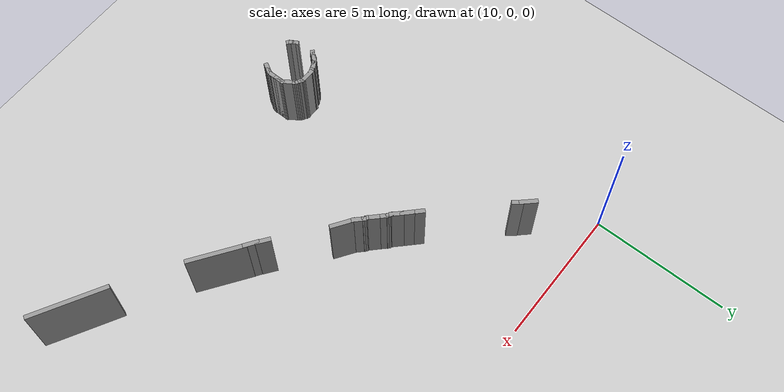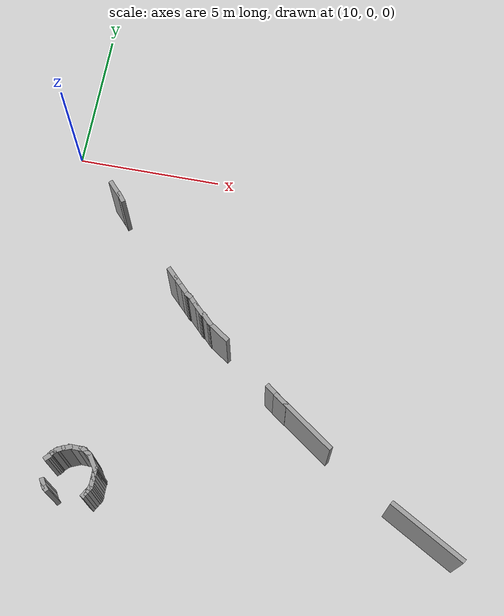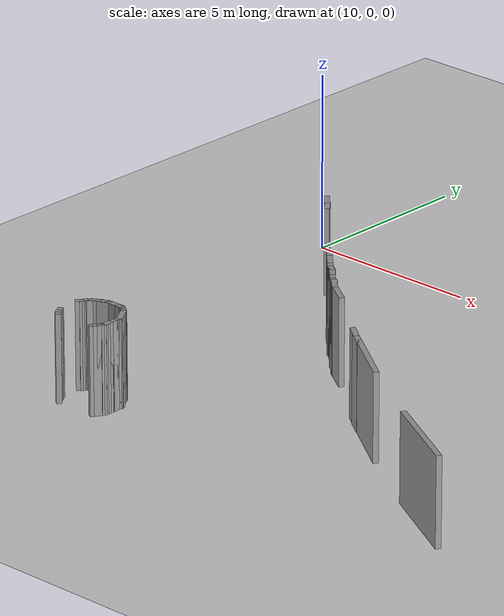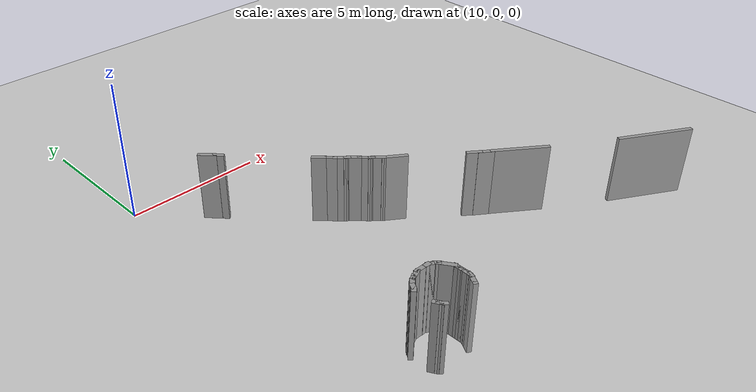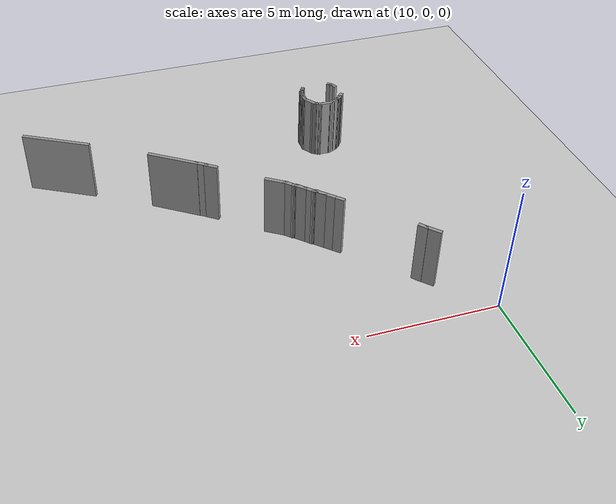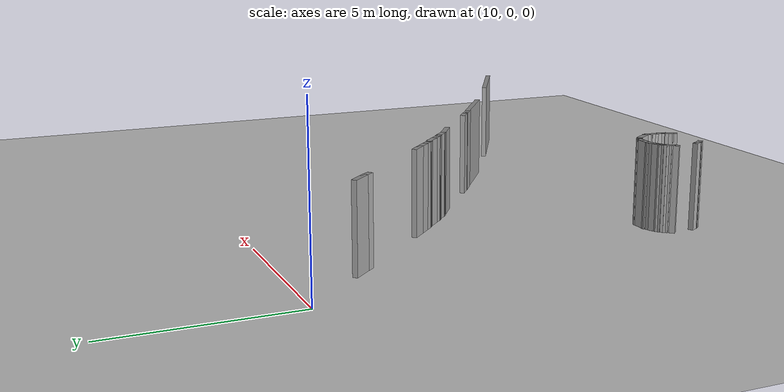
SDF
<sdf version="1.6">
 <world name="default">
  <model name="ground_plane">
   <static>1</static>
   <link name="link">
    <collision name="collision">
     <geometry><plane><normal>0 0 1</normal><size>100 100</size></plane></geometry>
     <surface><friction><ode><mu>100</mu><mu2>50</mu2></ode></friction></surface>
    </collision>
    <visual name="visual">
     <cast_shadows>0</cast_shadows>
     <geometry><plane><normal>0 0 1</normal><size>100 100</size></plane></geometry>
     <material>
      <script><uri>file://media/materials/scripts/gazebo.material</uri><name>Gazebo/Grey</name></script>
     </material>
    </visual>
   </link>
  </model>
  <model name="scene">
   <pose>1.8013 -1.70593 0 0 -0 0</pose>
   <link name="Wall_726">
    <collision name="Wall_726_Collision">
     <geometry><box><size>0.643159 0.15 2.5</size></box></geometry>
     <pose>0 0 1.25 0 -0 0</pose>
    </collision>
    <visual name="Wall_726_Visual">
     <pose>0 0 1.25 0 -0 0</pose>
     <geometry><box><size>0.643159 0.15 2.5</size></box></geometry>
     <material>
      <script><uri>file://media/materials/scripts/gazebo.material</uri><name>Gazebo/Grey</name></script>
      <ambient>1 1 1 1</ambient>
     </material>
    </visual>
    <pose>10.1342 -0.209403 0 0 0 -0.82161</pose>
   </link>
   <link name="Wall_727">
    <collision name="Wall_727_Collision">
     <geometry><box><size>0.403183 0.15 2.5</size></box></geometry>
     <pose>0 0 1.25 0 -0 0</pose>
    </collision>
    <visual name="Wall_727_Visual">
     <pose>0 0 1.25 0 -0 0</pose>
     <geometry><box><size>0.403183 0.15 2.5</size></box></geometry>
     <material>
      <script><uri>file://media/materials/scripts/gazebo.material</uri><name>Gazebo/Grey</name></script>
      <ambient>1 1 1 1</ambient>
     </material>
    </visual>
    <pose>10.3816 -0.475814 0 0 0 -0.891376</pose>
   </link>
   <link name="Wall_729">
    <collision name="Wall_729_Collision">
     <geometry><box><size>0.5 0.15 2.5</size></box></geometry>
     <pose>0 0 1.25 0 -0 0</pose>
    </collision>
    <visual name="Wall_729_Visual">
     <pose>0 0 1.25 0 -0 0</pose>
     <geometry><box><size>0.5 0.15 2.5</size></box></geometry>
     <material>
      <script><uri>file://media/materials/scripts/gazebo.material</uri><name>Gazebo/Grey</name></script>
      <ambient>1 1 1 1</ambient>
     </material>
    </visual>
    <pose>12.6596 -2.84662 0 0 0 -0.785398</pose>
   </link>
   <link name="Wall_730">
    <collision name="Wall_730_Collision">
     <geometry><box><size>0.5 0.15 2.5</size></box></geometry>
     <pose>0 0 1.25 0 -0 0</pose>
    </collision>
    <visual name="Wall_730_Visual">
     <pose>0 0 1.25 0 -0 0</pose>
     <geometry><box><size>0.5 0.15 2.5</size></box></geometry>
     <material>
      <script><uri>file://media/materials/scripts/gazebo.material</uri><name>Gazebo/Grey</name></script>
      <ambient>1 1 1 1</ambient>
     </material>
    </visual>
    <pose>12.9071 -3.0941 0 0 0 -0.785398</pose>
   </link>
   <link name="Wall_731">
    <collision name="Wall_731_Collision">
     <geometry><box><size>0.5 0.15 2.5</size></box></geometry>
     <pose>0 0 1.25 0 -0 0</pose>
    </collision>
    <visual name="Wall_731_Visual">
     <pose>0 0 1.25 0 -0 0</pose>
     <geometry><box><size>0.5 0.15 2.5</size></box></geometry>
     <material>
      <script><uri>file://media/materials/scripts/gazebo.material</uri><name>Gazebo/Grey</name></script>
      <ambient>1 1 1 1</ambient>
     </material>
    </visual>
    <pose>13.1546 -3.34159 0 0 0 -0.785398</pose>
   </link>
   <link name="Wall_732">
    <collision name="Wall_732_Collision">
     <geometry><box><size>0.25 0.15 2.5</size></box></geometry>
     <pose>0 0 1.25 0 -0 0</pose>
    </collision>
    <visual name="Wall_732_Visual">
     <pose>0 0 1.25 0 -0 0</pose>
     <geometry><box><size>0.25 0.15 2.5</size></box></geometry>
     <material>
      <script><uri>file://media/materials/scripts/gazebo.material</uri><name>Gazebo/Grey</name></script>
      <ambient>1 1 1 1</ambient>
     </material>
    </visual>
    <pose>13.3216 -3.49034 0 0 0 -0.523599</pose>
   </link>
   <link name="Wall_733">
    <collision name="Wall_733_Collision">
     <geometry><box><size>0.5 0.15 2.5</size></box></geometry>
     <pose>0 0 1.25 0 -0 0</pose>
    </collision>
    <visual name="Wall_733_Visual">
     <pose>0 0 1.25 0 -0 0</pose>
     <geometry><box><size>0.5 0.15 2.5</size></box></geometry>
     <material>
      <script><uri>file://media/materials/scripts/gazebo.material</uri><name>Gazebo/Grey</name></script>
      <ambient>1 1 1 1</ambient>
     </material>
    </visual>
    <pose>13.4887 -3.63908 0 0 0 -0.785398</pose>
   </link>
   <link name="Wall_734">
    <collision name="Wall_734_Collision">
     <geometry><box><size>0.5 0.15 2.5</size></box></geometry>
     <pose>0 0 1.25 0 -0 0</pose>
    </collision>
    <visual name="Wall_734_Visual">
     <pose>0 0 1.25 0 -0 0</pose>
     <geometry><box><size>0.5 0.15 2.5</size></box></geometry>
     <material>
      <script><uri>file://media/materials/scripts/gazebo.material</uri><name>Gazebo/Grey</name></script>
      <ambient>1 1 1 1</ambient>
     </material>
    </visual>
    <pose>13.7362 -3.88657 0 0 0 -0.785398</pose>
   </link>
   <link name="Wall_735">
    <collision name="Wall_735_Collision">
     <geometry><box><size>0.25 0.15 2.5</size></box></geometry>
     <pose>0 0 1.25 0 -0 0</pose>
    </collision>
    <visual name="Wall_735_Visual">
     <pose>0 0 1.25 0 -0 0</pose>
     <geometry><box><size>0.25 0.15 2.5</size></box></geometry>
     <material>
      <script><uri>file://media/materials/scripts/gazebo.material</uri><name>Gazebo/Grey</name></script>
      <ambient>1 1 1 1</ambient>
     </material>
    </visual>
    <pose>13.9032 -4.03531 0 0 0 -0.523599</pose>
   </link>
   <link name="Wall_736">
    <collision name="Wall_736_Collision">
     <geometry><box><size>0.5 0.15 2.5</size></box></geometry>
     <pose>0 0 1.25 0 -0 0</pose>
    </collision>
    <visual name="Wall_736_Visual">
     <pose>0 0 1.25 0 -0 0</pose>
     <geometry><box><size>0.5 0.15 2.5</size></box></geometry>
     <material>
      <script><uri>file://media/materials/scripts/gazebo.material</uri><name>Gazebo/Grey</name></script>
      <ambient>1 1 1 1</ambient>
     </material>
    </visual>
    <pose>14.0703 -4.18405 0 0 0 -0.785398</pose>
   </link>
   <link name="Wall_737">
    <collision name="Wall_737_Collision">
     <geometry><box><size>0.885349 0.15 2.5</size></box></geometry>
     <pose>0 0 1.25 0 -0 0</pose>
    </collision>
    <visual name="Wall_737_Visual">
     <pose>0 0 1.25 0 -0 0</pose>
     <geometry><box><size>0.885349 0.15 2.5</size></box></geometry>
     <material>
      <script><uri>file://media/materials/scripts/gazebo.material</uri><name>Gazebo/Grey</name></script>
      <ambient>1 1 1 1</ambient>
     </material>
    </visual>
    <pose>14.498 -4.51461 0 0 0 -0.597392</pose>
   </link>
   <link name="Wall_740">
    <collision name="Wall_740_Collision">
     <geometry><box><size>0.545464 0.15 2.5</size></box></geometry>
     <pose>0 0 1.25 0 -0 0</pose>
    </collision>
    <visual name="Wall_740_Visual">
     <pose>0 0 1.25 0 -0 0</pose>
     <geometry><box><size>0.545464 0.15 2.5</size></box></geometry>
     <material>
      <script><uri>file://media/materials/scripts/gazebo.material</uri><name>Gazebo/Grey</name></script>
      <ambient>1 1 1 1</ambient>
     </material>
    </visual>
    <pose>16.5696 -6.13706 0 0 0 -0.646181</pose>
   </link>
   <link name="Wall_741">
    <collision name="Wall_741_Collision">
     <geometry><box><size>0.559834 0.15 2.5</size></box></geometry>
     <pose>0 0 1.25 0 -0 0</pose>
    </collision>
    <visual name="Wall_741_Visual">
     <pose>0 0 1.25 0 -0 0</pose>
     <geometry><box><size>0.559834 0.15 2.5</size></box></geometry>
     <material>
      <script><uri>file://media/materials/scripts/gazebo.material</uri><name>Gazebo/Grey</name></script>
      <ambient>1 1 1 1</ambient>
     </material>
    </visual>
    <pose>16.8828 -6.37355 0 0 0 -0.610244</pose>
   </link>
   <link name="Wall_742">
    <collision name="Wall_742_Collision">
     <geometry><box><size>2.05114 0.15 2.5</size></box></geometry>
     <pose>0 0 1.25 0 -0 0</pose>
    </collision>
    <visual name="Wall_742_Visual">
     <pose>0 0 1.25 0 -0 0</pose>
     <geometry><box><size>2.05114 0.15 2.5</size></box></geometry>
     <material>
      <script><uri>file://media/materials/scripts/gazebo.material</uri><name>Gazebo/Grey</name></script>
      <ambient>1 1 1 1</ambient>
     </material>
    </visual>
    <pose>17.8398 -7.0393 0 0 0 -0.614835</pose>
   </link>
   <link name="Wall_746">
    <collision name="Wall_746_Collision">
     <geometry><box><size>2.77223 0.15 2.5</size></box></geometry>
     <pose>0 0 1.25 0 -0 0</pose>
    </collision>
    <visual name="Wall_746_Visual">
     <pose>0 0 1.25 0 -0 0</pose>
     <geometry><box><size>2.77223 0.15 2.5</size></box></geometry>
     <material>
      <script><uri>file://media/materials/scripts/gazebo.material</uri><name>Gazebo/Grey</name></script>
      <ambient>1 1 1 1</ambient>
     </material>
    </visual>
    <pose>21.9513 -9.59912 0 0 -0 2.62825</pose>
   </link>
   <link name="Wall_904">
    <collision name="Wall_904_Collision">
     <geometry><box><size>0.25 0.15 2.5</size></box></geometry>
     <pose>0 0 1.25 0 -0 0</pose>
    </collision>
    <visual name="Wall_904_Visual">
     <pose>0 0 1.25 0 -0 0</pose>
     <geometry><box><size>0.25 0.15 2.5</size></box></geometry>
     <material>
      <script><uri>file://media/materials/scripts/gazebo.material</uri><name>Gazebo/Grey</name></script>
      <ambient>1 1 1 1</ambient>
     </material>
    </visual>
    <pose>11.6241 -9.61394 0 0 0 -1.5708</pose>
   </link>
   <link name="Wall_905">
    <collision name="Wall_905_Collision">
     <geometry><box><size>0.25 0.15 2.5</size></box></geometry>
     <pose>0 0 1.25 0 -0 0</pose>
    </collision>
    <visual name="Wall_905_Visual">
     <pose>0 0 1.25 0 -0 0</pose>
     <geometry><box><size>0.25 0.15 2.5</size></box></geometry>
     <material>
      <script><uri>file://media/materials/scripts/gazebo.material</uri><name>Gazebo/Grey</name></script>
      <ambient>1 1 1 1</ambient>
     </material>
    </visual>
    <pose>11.6241 -9.71394 0 0 0 -1.5708</pose>
   </link>
   <link name="Wall_906">
    <collision name="Wall_906_Collision">
     <geometry><box><size>0.25 0.15 2.5</size></box></geometry>
     <pose>0 0 1.25 0 -0 0</pose>
    </collision>
    <visual name="Wall_906_Visual">
     <pose>0 0 1.25 0 -0 0</pose>
     <geometry><box><size>0.25 0.15 2.5</size></box></geometry>
     <material>
      <script><uri>file://media/materials/scripts/gazebo.material</uri><name>Gazebo/Grey</name></script>
      <ambient>1 1 1 1</ambient>
     </material>
    </visual>
    <pose>11.6241 -9.81394 0 0 0 -1.5708</pose>
   </link>
   <link name="Wall_907">
    <collision name="Wall_907_Collision">
     <geometry><box><size>0.25 0.15 2.5</size></box></geometry>
     <pose>0 0 1.25 0 -0 0</pose>
    </collision>
    <visual name="Wall_907_Visual">
     <pose>0 0 1.25 0 -0 0</pose>
     <geometry><box><size>0.25 0.15 2.5</size></box></geometry>
     <material>
      <script><uri>file://media/materials/scripts/gazebo.material</uri><name>Gazebo/Grey</name></script>
      <ambient>1 1 1 1</ambient>
     </material>
    </visual>
    <pose>11.6241 -9.91394 0 0 0 -1.5708</pose>
   </link>
   <link name="Wall_908">
    <collision name="Wall_908_Collision">
     <geometry><box><size>0.25 0.15 2.5</size></box></geometry>
     <pose>0 0 1.25 0 -0 0</pose>
    </collision>
    <visual name="Wall_908_Visual">
     <pose>0 0 1.25 0 -0 0</pose>
     <geometry><box><size>0.25 0.15 2.5</size></box></geometry>
     <material>
      <script><uri>file://media/materials/scripts/gazebo.material</uri><name>Gazebo/Grey</name></script>
      <ambient>1 1 1 1</ambient>
     </material>
    </visual>
    <pose>11.6241 -10.0139 0 0 0 -1.5708</pose>
   </link>
   <link name="Wall_909">
    <collision name="Wall_909_Collision">
     <geometry><box><size>0.25 0.15 2.5</size></box></geometry>
     <pose>0 0 1.25 0 -0 0</pose>
    </collision>
    <visual name="Wall_909_Visual">
     <pose>0 0 1.25 0 -0 0</pose>
     <geometry><box><size>0.25 0.15 2.5</size></box></geometry>
     <material>
      <script><uri>file://media/materials/scripts/gazebo.material</uri><name>Gazebo/Grey</name></script>
      <ambient>1 1 1 1</ambient>
     </material>
    </visual>
    <pose>11.6111 -10.1122 0 0 0 -1.8326</pose>
   </link>
   <link name="Wall_910">
    <collision name="Wall_910_Collision">
     <geometry><box><size>0.25 0.15 2.5</size></box></geometry>
     <pose>0 0 1.25 0 -0 0</pose>
    </collision>
    <visual name="Wall_910_Visual">
     <pose>0 0 1.25 0 -0 0</pose>
     <geometry><box><size>0.25 0.15 2.5</size></box></geometry>
     <material>
      <script><uri>file://media/materials/scripts/gazebo.material</uri><name>Gazebo/Grey</name></script>
      <ambient>1 1 1 1</ambient>
     </material>
    </visual>
    <pose>11.5732 -10.2038 0 0 0 -2.0944</pose>
   </link>
   <link name="Wall_911">
    <collision name="Wall_911_Collision">
     <geometry><box><size>0.25 0.15 2.5</size></box></geometry>
     <pose>0 0 1.25 0 -0 0</pose>
    </collision>
    <visual name="Wall_911_Visual">
     <pose>0 0 1.25 0 -0 0</pose>
     <geometry><box><size>0.25 0.15 2.5</size></box></geometry>
     <material>
      <script><uri>file://media/materials/scripts/gazebo.material</uri><name>Gazebo/Grey</name></script>
      <ambient>1 1 1 1</ambient>
     </material>
    </visual>
    <pose>11.5232 -10.2904 0 0 0 -2.0944</pose>
   </link>
   <link name="Wall_912">
    <collision name="Wall_912_Collision">
     <geometry><box><size>0.25 0.15 2.5</size></box></geometry>
     <pose>0 0 1.25 0 -0 0</pose>
    </collision>
    <visual name="Wall_912_Visual">
     <pose>0 0 1.25 0 -0 0</pose>
     <geometry><box><size>0.25 0.15 2.5</size></box></geometry>
     <material>
      <script><uri>file://media/materials/scripts/gazebo.material</uri><name>Gazebo/Grey</name></script>
      <ambient>1 1 1 1</ambient>
     </material>
    </visual>
    <pose>11.4732 -10.377 0 0 0 -2.0944</pose>
   </link>
   <link name="Wall_926">
    <collision name="Wall_926_Collision">
     <geometry><box><size>0.25 0.15 2.5</size></box></geometry>
     <pose>0 0 1.25 0 -0 0</pose>
    </collision>
    <visual name="Wall_926_Visual">
     <pose>0 0 1.25 0 -0 0</pose>
     <geometry><box><size>0.25 0.15 2.5</size></box></geometry>
     <material>
      <script><uri>file://media/materials/scripts/gazebo.material</uri><name>Gazebo/Grey</name></script>
      <ambient>1 1 1 1</ambient>
     </material>
    </visual>
    <pose>10.2352 -10.4005 0 0 -0 2.35619</pose>
   </link>
   <link name="Wall_927">
    <collision name="Wall_927_Collision">
     <geometry><box><size>0.25 0.15 2.5</size></box></geometry>
     <pose>0 0 1.25 0 -0 0</pose>
    </collision>
    <visual name="Wall_927_Visual">
     <pose>0 0 1.25 0 -0 0</pose>
     <geometry><box><size>0.25 0.15 2.5</size></box></geometry>
     <material>
      <script><uri>file://media/materials/scripts/gazebo.material</uri><name>Gazebo/Grey</name></script>
      <ambient>1 1 1 1</ambient>
     </material>
    </visual>
    <pose>10.1749 -10.3219 0 0 -0 2.0944</pose>
   </link>
   <link name="Wall_928">
    <collision name="Wall_928_Collision">
     <geometry><box><size>0.25 0.15 2.5</size></box></geometry>
     <pose>0 0 1.25 0 -0 0</pose>
    </collision>
    <visual name="Wall_928_Visual">
     <pose>0 0 1.25 0 -0 0</pose>
     <geometry><box><size>0.25 0.15 2.5</size></box></geometry>
     <material>
      <script><uri>file://media/materials/scripts/gazebo.material</uri><name>Gazebo/Grey</name></script>
      <ambient>1 1 1 1</ambient>
     </material>
    </visual>
    <pose>10.1249 -10.2353 0 0 -0 2.0944</pose>
   </link>
   <link name="Wall_931">
    <collision name="Wall_931_Collision">
     <geometry><box><size>0.25 0.15 2.5</size></box></geometry>
     <pose>0 0 1.25 0 -0 0</pose>
    </collision>
    <visual name="Wall_931_Visual">
     <pose>0 0 1.25 0 -0 0</pose>
     <geometry><box><size>0.25 0.15 2.5</size></box></geometry>
     <material>
      <script><uri>file://media/materials/scripts/gazebo.material</uri><name>Gazebo/Grey</name></script>
      <ambient>1 1 1 1</ambient>
     </material>
    </visual>
    <pose>10.0852 -9.47001 0 0 -0 0.785398</pose>
   </link>
   <link name="Wall_932">
    <collision name="Wall_932_Collision">
     <geometry><box><size>0.25 0.15 2.5</size></box></geometry>
     <pose>0 0 1.25 0 -0 0</pose>
    </collision>
    <visual name="Wall_932_Visual">
     <pose>0 0 1.25 0 -0 0</pose>
     <geometry><box><size>0.25 0.15 2.5</size></box></geometry>
     <material>
      <script><uri>file://media/materials/scripts/gazebo.material</uri><name>Gazebo/Grey</name></script>
      <ambient>1 1 1 1</ambient>
     </material>
    </visual>
    <pose>10.1456 -9.39135 0 0 -0 1.0472</pose>
   </link>
   <link name="Wall_933">
    <collision name="Wall_933_Collision">
     <geometry><box><size>0.25 0.15 2.5</size></box></geometry>
     <pose>0 0 1.25 0 -0 0</pose>
    </collision>
    <visual name="Wall_933_Visual">
     <pose>0 0 1.25 0 -0 0</pose>
     <geometry><box><size>0.25 0.15 2.5</size></box></geometry>
     <material>
      <script><uri>file://media/materials/scripts/gazebo.material</uri><name>Gazebo/Grey</name></script>
      <ambient>1 1 1 1</ambient>
     </material>
    </visual>
    <pose>10.2059 -9.3127 0 0 -0 0.785398</pose>
   </link>
   <link name="Wall_934">
    <collision name="Wall_934_Collision">
     <geometry><box><size>0.25 0.15 2.5</size></box></geometry>
     <pose>0 0 1.25 0 -0 0</pose>
    </collision>
    <visual name="Wall_934_Visual">
     <pose>0 0 1.25 0 -0 0</pose>
     <geometry><box><size>0.25 0.15 2.5</size></box></geometry>
     <material>
      <script><uri>file://media/materials/scripts/gazebo.material</uri><name>Gazebo/Grey</name></script>
      <ambient>1 1 1 1</ambient>
     </material>
    </visual>
    <pose>10.2767 -9.24198 0 0 -0 0.785398</pose>
   </link>
   <link name="Wall_935">
    <collision name="Wall_935_Collision">
     <geometry><box><size>0.25 0.15 2.5</size></box></geometry>
     <pose>0 0 1.25 0 -0 0</pose>
    </collision>
    <visual name="Wall_935_Visual">
     <pose>0 0 1.25 0 -0 0</pose>
     <geometry><box><size>0.25 0.15 2.5</size></box></geometry>
     <material>
      <script><uri>file://media/materials/scripts/gazebo.material</uri><name>Gazebo/Grey</name></script>
      <ambient>1 1 1 1</ambient>
     </material>
    </visual>
    <pose>10.3553 -9.18163 0 0 -0 0.523599</pose>
   </link>
   <link name="Wall_936">
    <collision name="Wall_936_Collision">
     <geometry><box><size>0.25 0.15 2.5</size></box></geometry>
     <pose>0 0 1.25 0 -0 0</pose>
    </collision>
    <visual name="Wall_936_Visual">
     <pose>0 0 1.25 0 -0 0</pose>
     <geometry><box><size>0.25 0.15 2.5</size></box></geometry>
     <material>
      <script><uri>file://media/materials/scripts/gazebo.material</uri><name>Gazebo/Grey</name></script>
      <ambient>1 1 1 1</ambient>
     </material>
    </visual>
    <pose>10.4419 -9.13163 0 0 -0 0.523599</pose>
   </link>
   <link name="Wall_938">
    <collision name="Wall_938_Collision">
     <geometry><box><size>0.477671 0.15 2.5</size></box></geometry>
     <pose>0 0 1.25 0 -0 0</pose>
    </collision>
    <visual name="Wall_938_Visual">
     <pose>0 0 1.25 0 -0 0</pose>
     <geometry><box><size>0.477671 0.15 2.5</size></box></geometry>
     <material>
      <script><uri>file://media/materials/scripts/gazebo.material</uri><name>Gazebo/Grey</name></script>
      <ambient>1 1 1 1</ambient>
     </material>
    </visual>
    <pose>10.5502 -9.09439 0 0 -0 0.389653</pose>
   </link>
   <link name="Wall_939">
    <collision name="Wall_939_Collision">
     <geometry><box><size>0.5 0.15 2.5</size></box></geometry>
     <pose>0 0 1.25 0 -0 0</pose>
    </collision>
    <visual name="Wall_939_Visual">
     <pose>0 0 1.25 0 -0 0</pose>
     <geometry><box><size>0.5 0.15 2.5</size></box></geometry>
     <material>
      <script><uri>file://media/materials/scripts/gazebo.material</uri><name>Gazebo/Grey</name></script>
      <ambient>1 1 1 1</ambient>
     </material>
    </visual>
    <pose>10.8767 -9.02494 0 0 -0 0</pose>
   </link>
   <link name="Wall_940">
    <collision name="Wall_940_Collision">
     <geometry><box><size>0.236861 0.15 2.5</size></box></geometry>
     <pose>0 0 1.25 0 -0 0</pose>
    </collision>
    <visual name="Wall_940_Visual">
     <pose>0 0 1.25 0 -0 0</pose>
     <geometry><box><size>0.236861 0.15 2.5</size></box></geometry>
     <material>
      <script><uri>file://media/materials/scripts/gazebo.material</uri><name>Gazebo/Grey</name></script>
      <ambient>1 1 1 1</ambient>
     </material>
    </visual>
    <pose>11.095 -9.03189 0 0 -0 0.006105</pose>
   </link>
   <link name="Wall_941">
    <collision name="Wall_941_Collision">
     <geometry><box><size>0.25 0.15 2.5</size></box></geometry>
     <pose>0 0 1.25 0 -0 0</pose>
    </collision>
    <visual name="Wall_941_Visual">
     <pose>0 0 1.25 0 -0 0</pose>
     <geometry><box><size>0.25 0.15 2.5</size></box></geometry>
     <material>
      <script><uri>file://media/materials/scripts/gazebo.material</uri><name>Gazebo/Grey</name></script>
      <ambient>1 1 1 1</ambient>
     </material>
    </visual>
    <pose>11.1816 -9.05663 0 0 0 -0.523599</pose>
   </link>
   <link name="Wall_942">
    <collision name="Wall_942_Collision">
     <geometry><box><size>0.25 0.15 2.5</size></box></geometry>
     <pose>0 0 1.25 0 -0 0</pose>
    </collision>
    <visual name="Wall_942_Visual">
     <pose>0 0 1.25 0 -0 0</pose>
     <geometry><box><size>0.25 0.15 2.5</size></box></geometry>
     <material>
      <script><uri>file://media/materials/scripts/gazebo.material</uri><name>Gazebo/Grey</name></script>
      <ambient>1 1 1 1</ambient>
     </material>
    </visual>
    <pose>11.2682 -9.10663 0 0 0 -0.523599</pose>
   </link>
   <link name="Wall_943">
    <collision name="Wall_943_Collision">
     <geometry><box><size>0.25 0.15 2.5</size></box></geometry>
     <pose>0 0 1.25 0 -0 0</pose>
    </collision>
    <visual name="Wall_943_Visual">
     <pose>0 0 1.25 0 -0 0</pose>
     <geometry><box><size>0.25 0.15 2.5</size></box></geometry>
     <material>
      <script><uri>file://media/materials/scripts/gazebo.material</uri><name>Gazebo/Grey</name></script>
      <ambient>1 1 1 1</ambient>
     </material>
    </visual>
    <pose>11.3469 -9.16699 0 0 0 -0.785398</pose>
   </link>
   <link name="Wall_944">
    <collision name="Wall_944_Collision">
     <geometry><box><size>0.585021 0.15 2.5</size></box></geometry>
     <pose>0 0 1.25 0 -0 0</pose>
    </collision>
    <visual name="Wall_944_Visual">
     <pose>0 0 1.25 0 -0 0</pose>
     <geometry><box><size>0.585021 0.15 2.5</size></box></geometry>
     <material>
      <script><uri>file://media/materials/scripts/gazebo.material</uri><name>Gazebo/Grey</name></script>
      <ambient>1 1 1 1</ambient>
     </material>
    </visual>
    <pose>11.5032 -9.38314 0 0 0 -0.981318</pose>
   </link>
   <static>1</static>
  </model>
 </world>
</sdf>
